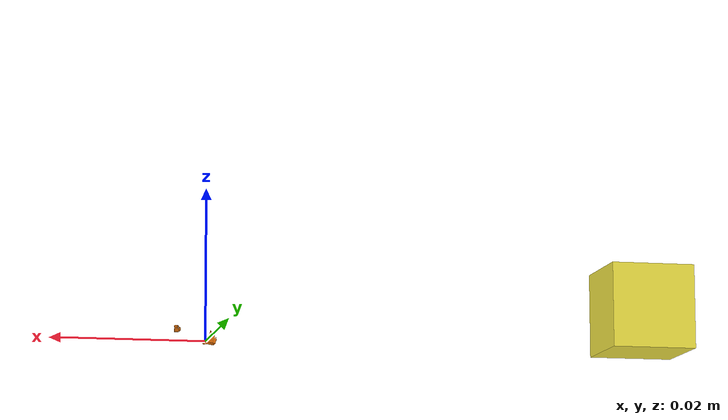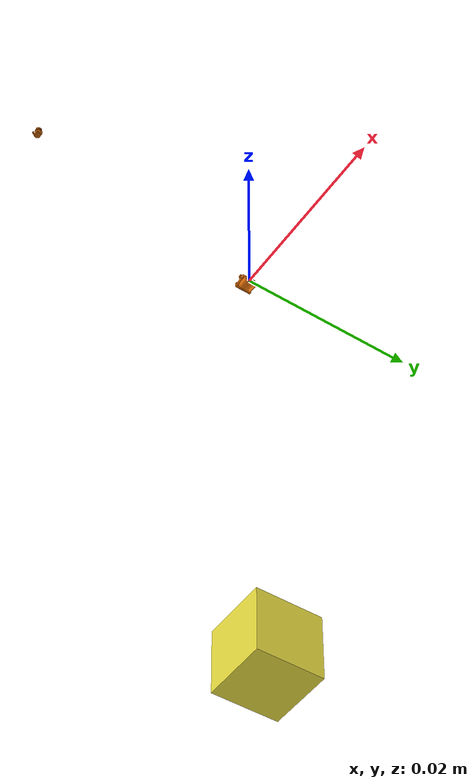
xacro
<robot xmlns:xacro="http://www.ros.org/wiki/xacro" name="atlas" >
    <xacro:include filename="$(find atlas_description)/urdf/atlas_v5_simple_shapes.urdf" />
    <xacro:include filename="$(find ihmc_gazebo)/urdf/atlas_v5.gazebo" />
    <xacro:include filename="$(find atlas_description)/urdf/atlas_v5.transmission" />
    <xacro:include filename="$(find multisense_sl_description)/urdf/multisense_sl_v4.urdf" />
</robot>

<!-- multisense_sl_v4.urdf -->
<robot name="multisense_sl">
  <!-- Head Link Simple Collision Meshes -->
  <link name="head">
    <inertial>
      <origin xyz="-0.075493 3.3383E-05 0.02774" rpy="0 0 0" />
      <mass value="1.41984" />
      <inertia iyy="0.0041178" ixy="-1.5797E-06" iyz="-6.8415E-07" ixx="0.0039688" ixz="-0.00089293" izz="0.0035243" />
    </inertial>
    <visual>
      <origin xyz="0 0 0" rpy="0 0 0" />
      <geometry>
        <mesh filename="package://multisense_sl_description/meshes/head.dae" />
      </geometry>
      <material name="">
        <color rgba="0.9098 0.44314 0.031373 1" />
      </material>
    </visual>
  <collision group="default">
    <origin xyz="-0.0503 0 -0.00195" rpy="0 0 0" />
    <geometry>
      <box size="0.1311 0.12 0.0591"/>
    </geometry>
  </collision>
  <collision group="other">
    <origin xyz="-0.093 0 0.0868" rpy="0 0 0" />
    <geometry>
      <box size="0.0468 0.12 0.1184"/>
    </geometry>
  </collision>
  </link>
  <link name="hokuyo_link">
    <inertial>
      <origin xyz="0.032428 0.0004084 -0.0041835" rpy="0 0 0" />
      <mass value="0.057654" />
      <inertia iyy="4.2412E-05" ixy="4.9927E-08" iyz="-9.8165E-09" ixx="3.7174E-05" ixz="1.1015E-05" izz="4.167E-05" />
    </inertial>
    <visual>
      <!--origin xyz="0.065774 -0.001163 -0.08809" rpy="0 0 0" /-->
      <!--origin xyz="0.045 -0.001163 -0.08809" rpy="-0.314 0 0" /-->
      <origin xyz="0.045 -0.0261018277 -0.08342369" rpy="-0.314 0 0" />
      <geometry>
        <mesh filename="package://multisense_sl_description/meshes/head_camera.dae" />
      </geometry>
      <material name="">
        <color rgba="0.72941 0.35686 0.023529 1" />
      </material>
    </visual>
  <collision group="default">
    <origin xyz="0.01885 0 -0.02119" rpy="0 0 0" />
    <geometry>
      <box size="0.08 0.06 0.04238"/>
    </geometry>
  </collision>
  <collision group="other">
    <origin xyz="0.03 0 0.0235" rpy="0 0 0" />
    <geometry>
      <cylinder radius="0.024425" length="0.047"/>
    </geometry>
  </collision>
  </link>
  <gazebo reference="head">
    <mu1>0.9</mu1>
    <mu2>0.9</mu2>
  </gazebo>
  <gazebo reference="hokuyo_link">
    <mu1>0.9</mu1>
    <mu2>0.9</mu2>
  </gazebo>

  <joint name="hokuyo_joint" type="continuous">
    <origin xyz="-0.0446 0 0.0880" rpy="0 0 0" />
    <parent link="head" />
    <child link="hokuyo_link" />
    <axis xyz="1 0 0" />
    <dynamics damping="0.01" friction="0"/>
  </joint>
  <gazebo reference="hokuyo_joint">
    <implicitSpringDamper>1</implicitSpringDamper>
  </gazebo>

  <!-- Hokuyo Laser -->
  <joint name="head_hokuyo_joint" type="fixed">
    <axis xyz="0 1 0" />
    <origin xyz="0.03 0 0.015" rpy="0 0 0"/>
    <parent link="hokuyo_link"/>
    <child link="head_hokuyo_frame"/>
  </joint>
  <link name="head_hokuyo_frame">
    <inertial>
      <mass value="1e-5" />
      <!-- collocate with parent link and remove mass from it -->
      <origin xyz="0.042428 0.0004084 0.0108165" rpy="0 0 0"/>
      <inertia ixx="1e-6" ixy="0" ixz="0" iyy="1e-6" iyz="0" izz="1e-6" />
    </inertial>
  </link>
  <gazebo reference="head_hokuyo_frame">
    <sensor type="gpu_ray" name="head_hokuyo_sensor">
      <pose>0 0 0 0 0 0</pose>
      <visualize>false</visualize>
      <update_rate>40</update_rate>
      <ray>
        <scan>
          <horizontal>
            <samples>720</samples>
            <resolution>1</resolution>
            <min_angle>-1.570796</min_angle>
            <max_angle>1.570796</max_angle>
          </horizontal>
        </scan>
        <range>
          <min>0.10</min>
          <max>30.0</max>
          <resolution>0.01</resolution>
        </range>
        <noise>
          <type>gaussian</type>
          <mean>0.0</mean>
          <stddev>0.01</stddev>
        </noise>
      </ray>
      <plugin name="gazebo_ros_head_hokuyo_controller" filename="libgazebo_ros_gpu_laser.so">
        <topicName>/multisense/lidar_scan</topicName>
        <frameName>head_hokuyo_frame</frameName>
      </plugin>
    </sensor>
  </gazebo>
  <!-- Stereo Camera -->
  <joint name="left_camera_frame_joint" type="fixed">
    <!-- optical frame collocated with tilting DOF -->
    <origin xyz="0.0 0.035 -0.002"/>
    <parent link="head"/>
    <child link="left_camera_frame"/>
  </joint>
  <link name="left_camera_frame">
    <inertial>
      <mass value="1e-5" />
      <!-- collocate with parent link and remove mass from it -->
      <origin xyz="-0.075493 0.035033383 0.02574"/>
      <inertia ixx="1e-6" ixy="0" ixz="0" iyy="1e-6" iyz="0" izz="1e-6" />
    </inertial>
  </link>
  <joint name="left_camera_optical_frame_joint" type="fixed">
    <origin xyz="0 0 0" rpy="-1.5708 0.0 -1.5708" />
    <parent link="left_camera_frame" />
    <child link="left_camera_optical_frame"/>
  </joint>
  <link name="left_camera_optical_frame"/>
  <gazebo reference="left_camera_frame">
    <sensor type="multicamera" name="stereo_camera">
      <!-- see MultiSenseSLPlugin.h for available modes -->
      <update_rate>30.0</update_rate>
      <camera name="left">
        <!-- Spec sheet says 80deg X 45deg @ 1024x544pix.  Based on feedback
             from teams, we're instead doing 80deg X 80deg @ 800x800pix. -->
        <horizontal_fov>1.3962634</horizontal_fov>
        <image>
          <width>800</width>
          <height>800</height>
          <format>R8G8B8</format>
        </image>
        <clip>
          <near>0.02</near>
          <far>300</far>
        </clip>
        <noise>
          <type>gaussian</type>
          <mean>0.0</mean>
          <stddev>0.007</stddev>
        </noise>
      </camera>
      <camera name="right">
        <pose>0 -0.07 0 0 0 0</pose>
        <!-- Spec sheet says 80deg X 45deg @ 1024x544pix.  Based on feedback
             from teams, we're instead doing 80deg X 80deg @ 800x800pix. -->
        <horizontal_fov>1.3962634</horizontal_fov>
        <image>
          <width>800</width>
          <height>800</height>
          <format>R8G8B8</format>
        </image>
        <clip>
          <near>0.02</near>
          <far>300</far>
        </clip>
        <noise>
          <type>gaussian</type>
          <mean>0.0</mean>
          <stddev>0.007</stddev>
        </noise>
      </camera>
      <plugin name="stereo_camera_controller" filename="libgazebo_ros_multicamera.so">
        <alwaysOn>true</alwaysOn>
        <updateRate>0.0</updateRate>
        <cameraName>multisense/camera</cameraName>
        <imageTopicName>image_raw</imageTopicName>
        <cameraInfoTopicName>camera_info</cameraInfoTopicName>
        <frameName>left_camera_optical_frame</frameName>
        <hackBaseline>0.07</hackBaseline>
        <distortionK1>0.0</distortionK1>
        <distortionK2>0.0</distortionK2>
        <distortionK3>0.0</distortionK3>
        <distortionT1>0.0</distortionT1>
        <distortionT2>0.0</distortionT2>
      </plugin>
    </sensor>
  </gazebo>

  <joint name="right_camera_frame_joint" type="fixed">
    <origin xyz="0.0 -0.035 -0.002"/>
    <parent link="head"/>
    <child link="right_camera_frame"/>
  </joint>
  <link name="right_camera_frame">
    <inertial>
      <mass value="1e-5" />
      <!-- collocate with parent link and remove mass from it -->
      <origin xyz="-0.075493 -0.034966617 0.02574"/>
      <inertia ixx="1e-6" ixy="0" ixz="0" iyy="1e-6" iyz="0" izz="1e-6" />
    </inertial>
  </link>
  <joint name="right_camera_optical_frame_joint" type="fixed">
    <origin xyz="0 0 0" rpy="-1.5708 0.0 -1.5708" />
    <parent link="right_camera_frame" />
    <child link="right_camera_optical_frame"/>
  </joint>
  <link name="right_camera_optical_frame"/>

  <joint name="center_top_led_frame_joint" type="fixed">
    <origin xyz="0.01125 0.0 0.0105"/>
    <parent link="head"/>
    <child link="center_top_led_frame"/>
  </joint>
  <link name="center_top_led_frame">
    <inertial>
      <mass value="1e-5" />
      <!-- collocate with parent link and remove mass from it -->
      <origin xyz="-0.064243 0.000033383 0.03824" rpy="0 0 0" />
      <inertia ixx="1e-6" ixy="0" ixz="0" iyy="1e-6" iyz="0" izz="1e-6" />
    </inertial>
  </link>
  <joint name="center_bottom_led_frame_joint" type="fixed">
    <origin xyz="0.01125 0.0 -0.0155"/>
    <parent link="head"/>
    <child link="center_bottom_led_frame"/>
  </joint>
  <link name="center_bottom_led_frame">
    <inertial>
      <mass value="1e-5" />
      <!-- collocate with parent link and remove mass from it -->
      <origin xyz="-0.064243 0.000033383 0.01224" rpy="0 0 0" />
      <inertia ixx="1e-6" ixy="0" ixz="0" iyy="1e-6" iyz="0" izz="1e-6" />
    </inertial>
  </link>
  <joint name="left_led_frame_joint" type="fixed">
    <origin xyz="-0.01443 0.07452 0.050346" rpy="0 -0.15 0.53"/>
    <parent link="head"/>
    <child link="left_led_frame"/>
  </joint>
  <link name="left_led_frame">
    <inertial>
      <mass value="1e-5" />
      <!-- collocate with parent link and remove mass from it -->
      <origin xyz="-0.089923 0.074553383 0.078086" rpy="0 -0.15 0.53" />
      <inertia ixx="1e-6" ixy="0" ixz="0" iyy="1e-6" iyz="0" izz="1e-6" />
    </inertial>
  </link>
  <joint name="right_led_frame_joint" type="fixed">
    <origin xyz="-0.01443 -0.07452 0.050346" rpy="0 -0.15 -0.53"/>
    <parent link="head"/>
    <child link="right_led_frame"/>
  </joint>
  <link name="right_led_frame">
    <inertial>
      <mass value="1e-5" />
      <!-- collocate with parent link and remove mass from it -->
      <origin xyz="-0.089923 -0.074486617 0.07908" rpy="0 -0.15 -0.53" />
      <inertia ixx="1e-6" ixy="0" ixz="0" iyy="1e-6" iyz="0" izz="1e-6" />
    </inertial>
  </link>

  <gazebo>
    <plugin filename="libMultiSenseSLPlugin.so" name="multisense_plugin"/>
  </gazebo>

  <!-- imu link -->
  <link name="head_imu_link">
    <inertial>
      <mass value="1e-5" />
      <!-- collocate with parent link and remove mass from it -->
      <origin xyz="-0.122993 0.035033383 0.02774" rpy="0 0 0" />
      <inertia ixx="1e-6" ixy="0" ixz="0" iyy="1e-6" iyz="0" izz="1e-6" />
    </inertial>
    <visual>
      <origin rpy="0 0 0" xyz="0 0 0"/>
      <geometry>
        <box size="0.01 0.01 0.01"/>
      </geometry>
    </visual>
  </link>
  <joint name="head_imu_joint" type="fixed">
    <parent link="head"/>
    <child link="head_imu_link"/>
    <!-- putting it at the same z-level as the stereo -->
    <origin xyz="-0.0475 0.035 0.0" rpy="0 0 0"/>
  </joint>
  <gazebo reference="head_imu_link">
    <!-- this is expected to be reparented to head with appropriate offset
         when head_imu_link is reduced by fixed joint reduction -->
    <!-- todo: this is working with gazebo 1.4, need to write a unit test -->
    <sensor name="head_imu_sensor" type="imu">
      <always_on>1</always_on>
      <update_rate>1000.0</update_rate>
      <imu>
        <noise>
          <type>gaussian</type>
          <rate>
            <mean>0.0</mean>
            <stddev>2e-4</stddev>
            <bias_mean>0.0000075</bias_mean>
            <bias_stddev>0.0000008</bias_stddev>
          </rate>
          <accel>
            <mean>0.0</mean>
            <stddev>1.7e-2</stddev>
            <bias_mean>0.1</bias_mean>
            <bias_stddev>0.001</bias_stddev>
          </accel>
        </noise>
      </imu>
    </sensor>
  </gazebo>
</robot>
